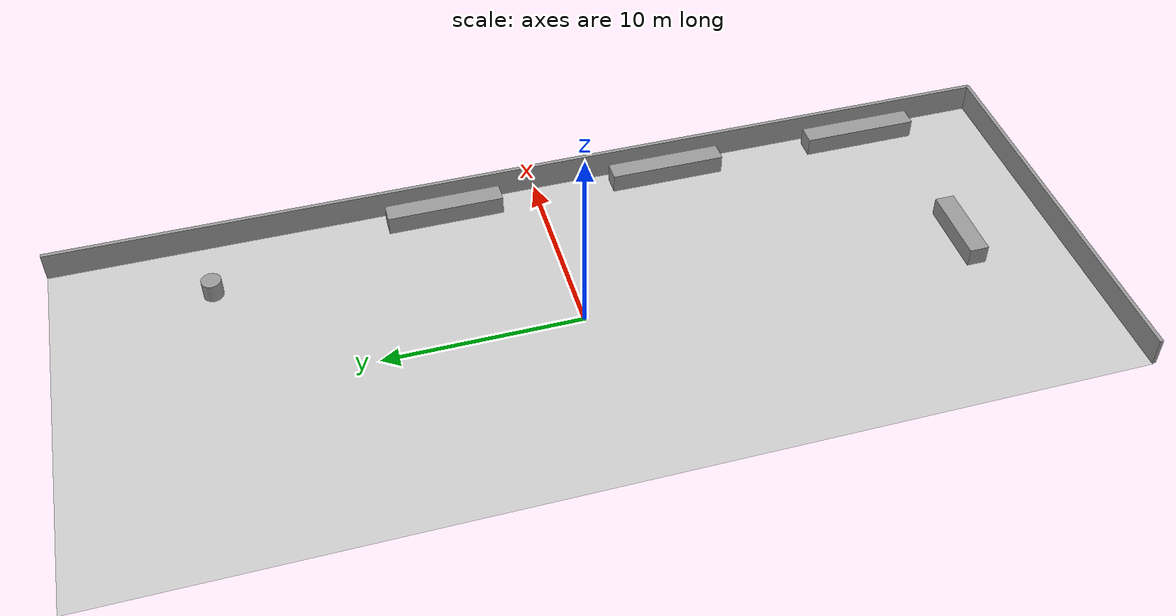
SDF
<sdf version="1.7">
 <world name="default">
  <light name="sun" type="directional">
   <pose>0 0 10 0 -0 0</pose>
   <diffuse>0.8 0.8 0.8 1</diffuse>
   <specular>0.2 0.2 0.2 1</specular>
   <attenuation>
    <range>1000</range>
    <constant>0.9</constant>
    <linear>0.01</linear>
    <quadratic>0.001</quadratic>
   </attenuation>
   <direction>-0.5 0.1 -0.9</direction>
   <spot><inner_angle>0</inner_angle><outer_angle>0</outer_angle><falloff>0</falloff></spot>
  </light>
  <gravity>0 0 -9.8</gravity>
  <magnetic_field>6e-06 2.3e-05 -4.2e-05</magnetic_field>
  <atmosphere type="adiabatic"/>
  <physics type="ode">
   <max_step_size>0.001</max_step_size>
   <real_time_factor>1</real_time_factor>
   <real_time_update_rate>1000</real_time_update_rate>
  </physics>
  <scene><ambient>0.4 0.4 0.4 1</ambient><background>0.7 0.7 0.7 1</background><shadows>1</shadows></scene>
  <audio><device>default</device></audio>
  <spherical_coordinates>
   <surface_model>EARTH_WGS84</surface_model>
   <latitude_deg>0</latitude_deg>
   <longitude_deg>0</longitude_deg>
   <elevation>0</elevation>
   <heading_deg>0</heading_deg>
  </spherical_coordinates>
  <model name="my_ground_plane">
   <static>1</static>
   <link name="link">
    <collision name="collision">
     <geometry><plane><normal>0 0 1</normal><size>20 50</size></plane></geometry>
     <surface><friction><ode><mu>100</mu><mu2>50</mu2></ode></friction></surface>
    </collision>
    <visual name="visual">
     <cast_shadows>0</cast_shadows>
     <geometry><plane><normal>0 0 1</normal><size>20 50</size></plane></geometry>
     <material>
      <script>
       <uri>model://my_ground_plane/materials/scripts</uri>
       <uri>model://my_ground_plane/materials/textures/</uri>
       <name>MyGroundPlane/Image</name>
      </script>
     </material>
    </visual>
   </link>
  </model>
  <model name="grey_wall">
   <static>1</static>
   <link name="link">
    <pose>0 0 1.4 0 -0 0</pose>
    <collision name="collision"><geometry><box><size>20 0.2 1.5</size></box></geometry></collision>
    <visual name="visual">
     <cast_shadows>0</cast_shadows>
     <geometry><box><size>20 0.2 1.5</size></box></geometry>
     <material>
      <script>
       <uri>model://grey_wall/materials/scripts</uri>
       <uri>model://grey_wall/materials/textures</uri>
       <name>vrc/grey_wall</name>
      </script>
     </material>
    </visual>
   </link>
   <pose>0 -25 -0.65 0 -0 0</pose>
  </model>
  <model name="grey_wall_0">
   <static>1</static>
   <link name="link">
    <pose>0 0 1.4 0 -0 1.57</pose>
    <collision name="collision"><geometry><box><size>50 0.2 1.5</size></box></geometry></collision>
    <visual name="visual">
     <cast_shadows>0</cast_shadows>
     <geometry><box><size>50 0.2 1.5</size></box></geometry>
     <material>
      <script>
       <uri>model://grey_wall/materials/scripts</uri>
       <uri>model://grey_wall/materials/textures</uri>
       <name>vrc/grey_wall</name>
      </script>
     </material>
    </visual>
   </link>
   <pose>10 0 -0.65 0 -0 0</pose>
  </model>
  <model name="unit_box">
   <pose>0.342215 -20 0.499253 0 -0.000373 -2e-06</pose>
   <link name="link">
    <inertial>
     <mass>1</mass>
     <inertia>
      <ixx>0.166667</ixx>
      <ixy>0</ixy>
      <ixz>0</ixz>
      <iyy>0.166667</iyy>
      <iyz>0</iyz>
      <izz>0.166667</izz>
     </inertia>
    </inertial>
    <collision name="collision"><geometry><box><size>4 1 1</size></box></geometry></collision>
    <visual name="visual">
     <geometry><box><size>4 1 1</size></box></geometry>
     <material>
      <script><name>Gazebo/Grey</name><uri>file://media/materials/scripts/gazebo.material</uri></script>
     </material>
    </visual>
   </link>
  </model>
  <model name="unit_cylinder">
   <pose>6.55813 17.1135 0.499998 3e-06 -2e-06 0</pose>
   <link name="link">
    <inertial>
     <mass>1</mass>
     <inertia><ixx>0.145833</ixx><ixy>0</ixy><ixz>0</ixz><iyy>0.145833</iyy><iyz>0</iyz><izz>0.125</izz></inertia>
    </inertial>
    <collision name="collision">
     <geometry><cylinder><radius>0.5</radius><length>1</length></cylinder></geometry>
    </collision>
    <visual name="visual">
     <geometry><cylinder><radius>0.5</radius><length>1</length></cylinder></geometry>
     <material>
      <script><name>Gazebo/Grey</name><uri>file://media/materials/scripts/gazebo.material</uri></script>
     </material>
    </visual>
   </link>
  </model>
  <model name="unit_box_0">
   <pose>9 -18.0019 0.495179 0 -0.001608 1.5709</pose>
   <link name="link">
    <inertial>
     <mass>1</mass>
     <inertia>
      <ixx>0.166667</ixx>
      <ixy>0</ixy>
      <ixz>0</ixz>
      <iyy>0.166667</iyy>
      <iyz>0</iyz>
      <izz>0.166667</izz>
     </inertia>
    </inertial>
    <collision name="collision"><geometry><box><size>6 1 1</size></box></geometry></collision>
    <visual name="visual">
     <geometry><box><size>6 1 1</size></box></geometry>
     <material>
      <script><name>Gazebo/Grey</name><uri>file://media/materials/scripts/gazebo.material</uri></script>
     </material>
    </visual>
   </link>
  </model>
  <model name="unit_box_0_clone">
   <pose>9 -7 0.495179 0 -0.001608 1.5709</pose>
   <link name="link">
    <inertial>
     <mass>1</mass>
     <inertia>
      <ixx>0.166667</ixx>
      <ixy>0</ixy>
      <ixz>0</ixz>
      <iyy>0.166667</iyy>
      <iyz>0</iyz>
      <izz>0.166667</izz>
     </inertia>
    </inertial>
    <collision name="collision"><geometry><box><size>6 1 1</size></box></geometry></collision>
    <visual name="visual">
     <geometry><box><size>6 1 1</size></box></geometry>
     <material>
      <script><name>Gazebo/Grey</name><uri>file://media/materials/scripts/gazebo.material</uri></script>
     </material>
    </visual>
   </link>
  </model>
  <model name="unit_box_0_clone_0">
   <pose>9 5.00021 0.495179 0 0.001608 1.5709</pose>
   <link name="link">
    <inertial>
     <mass>1</mass>
     <inertia>
      <ixx>0.166667</ixx>
      <ixy>0</ixy>
      <ixz>0</ixz>
      <iyy>0.166667</iyy>
      <iyz>0</iyz>
      <izz>0.166667</izz>
     </inertia>
    </inertial>
    <collision name="collision"><geometry><box><size>6 1 1</size></box></geometry></collision>
    <visual name="visual">
     <geometry><box><size>6 1 1</size></box></geometry>
     <material>
      <script><name>Gazebo/Grey</name><uri>file://media/materials/scripts/gazebo.material</uri></script>
     </material>
    </visual>
   </link>
  </model>
 </world>
</sdf>
